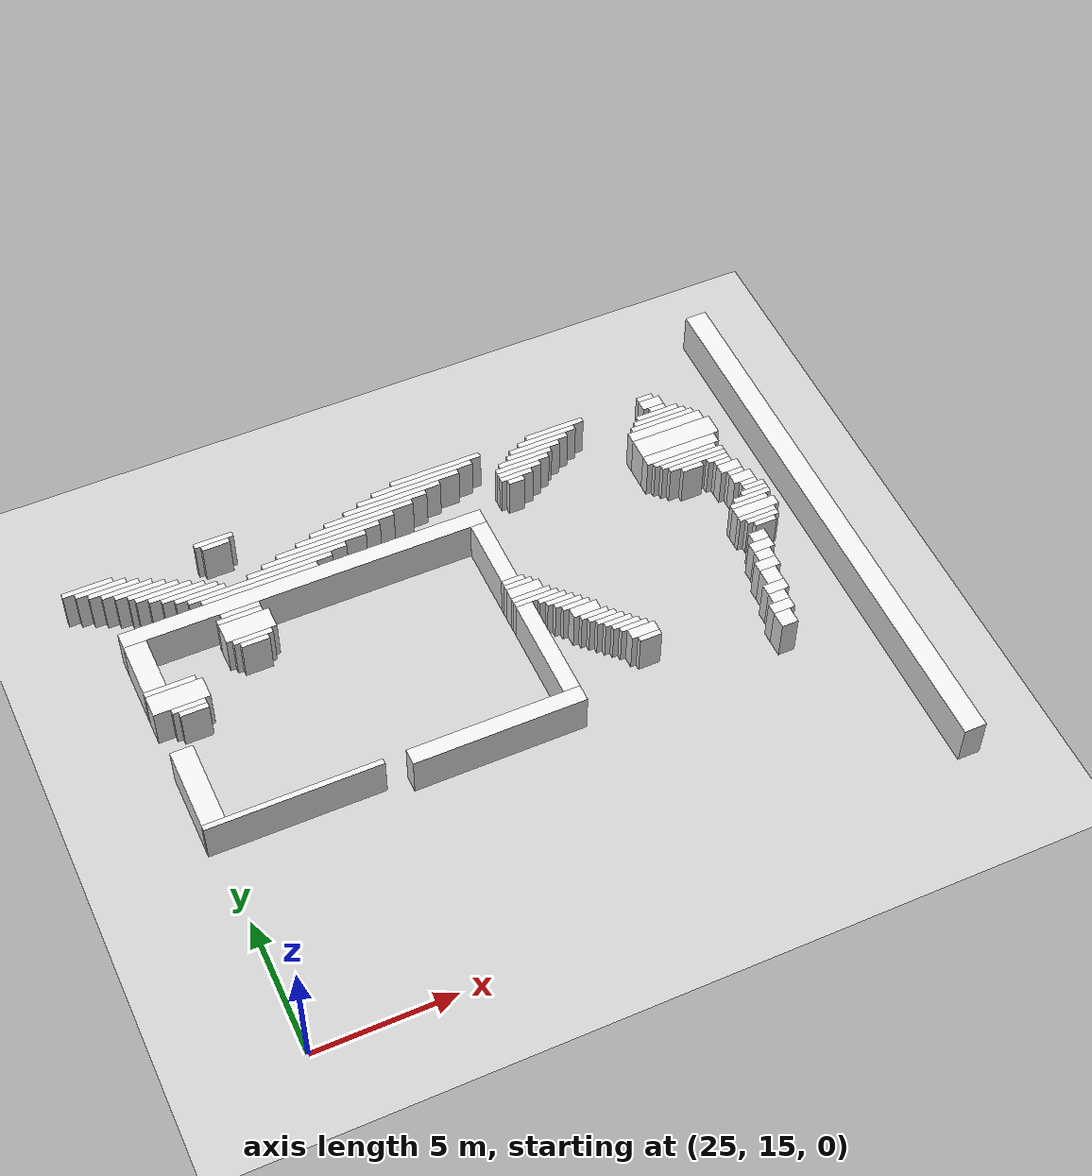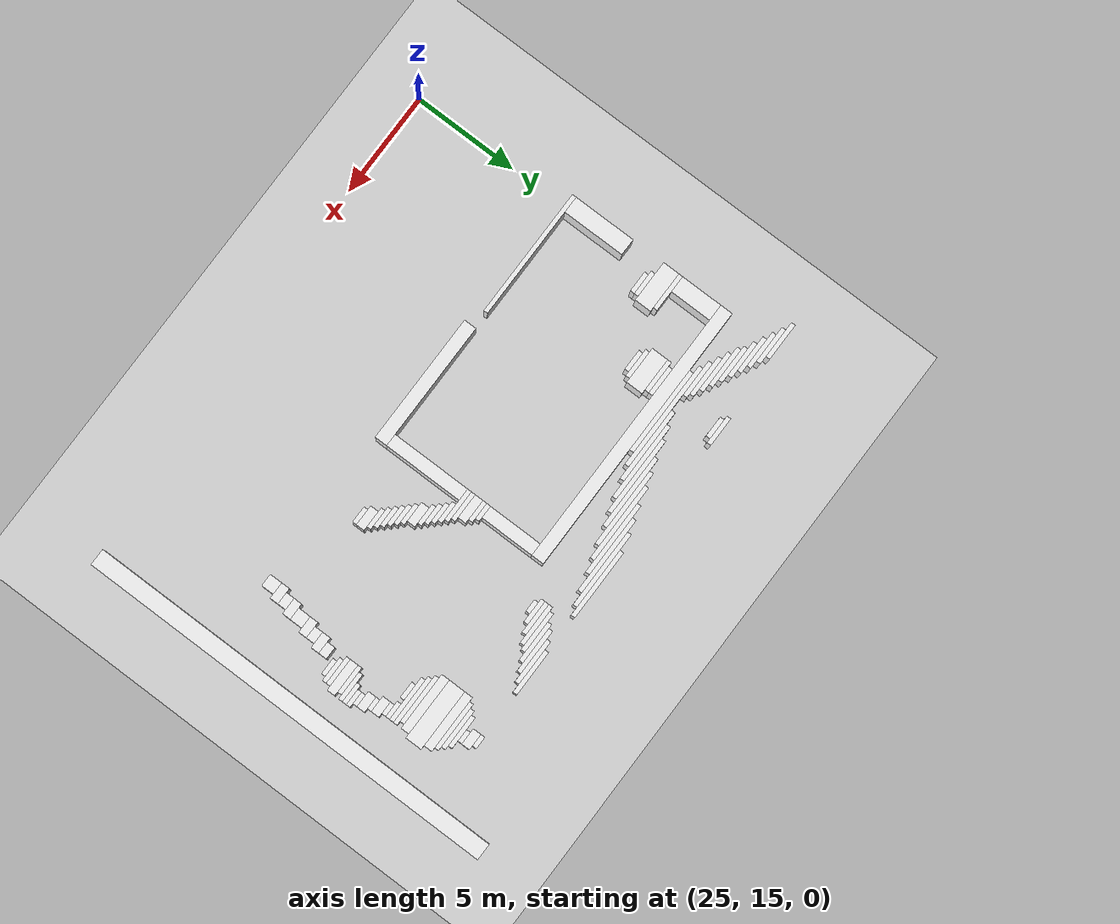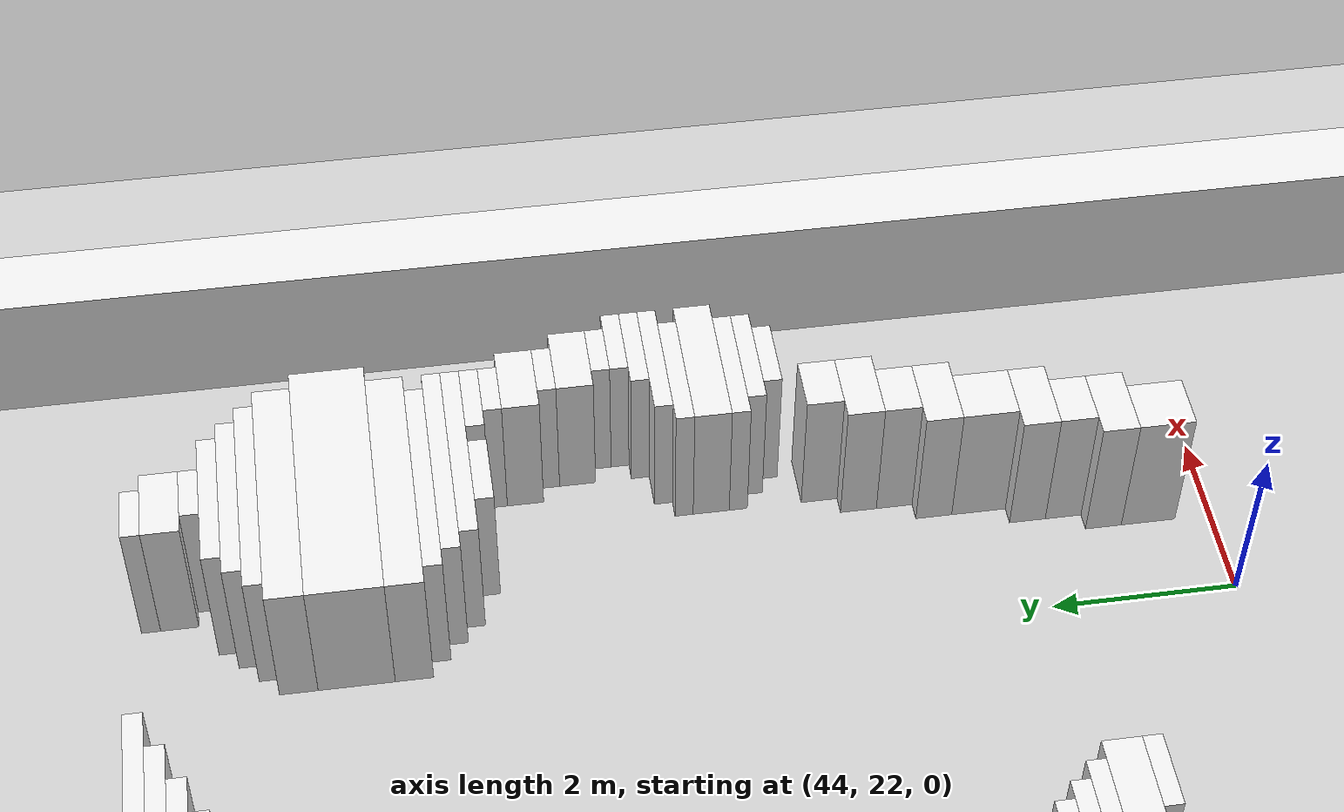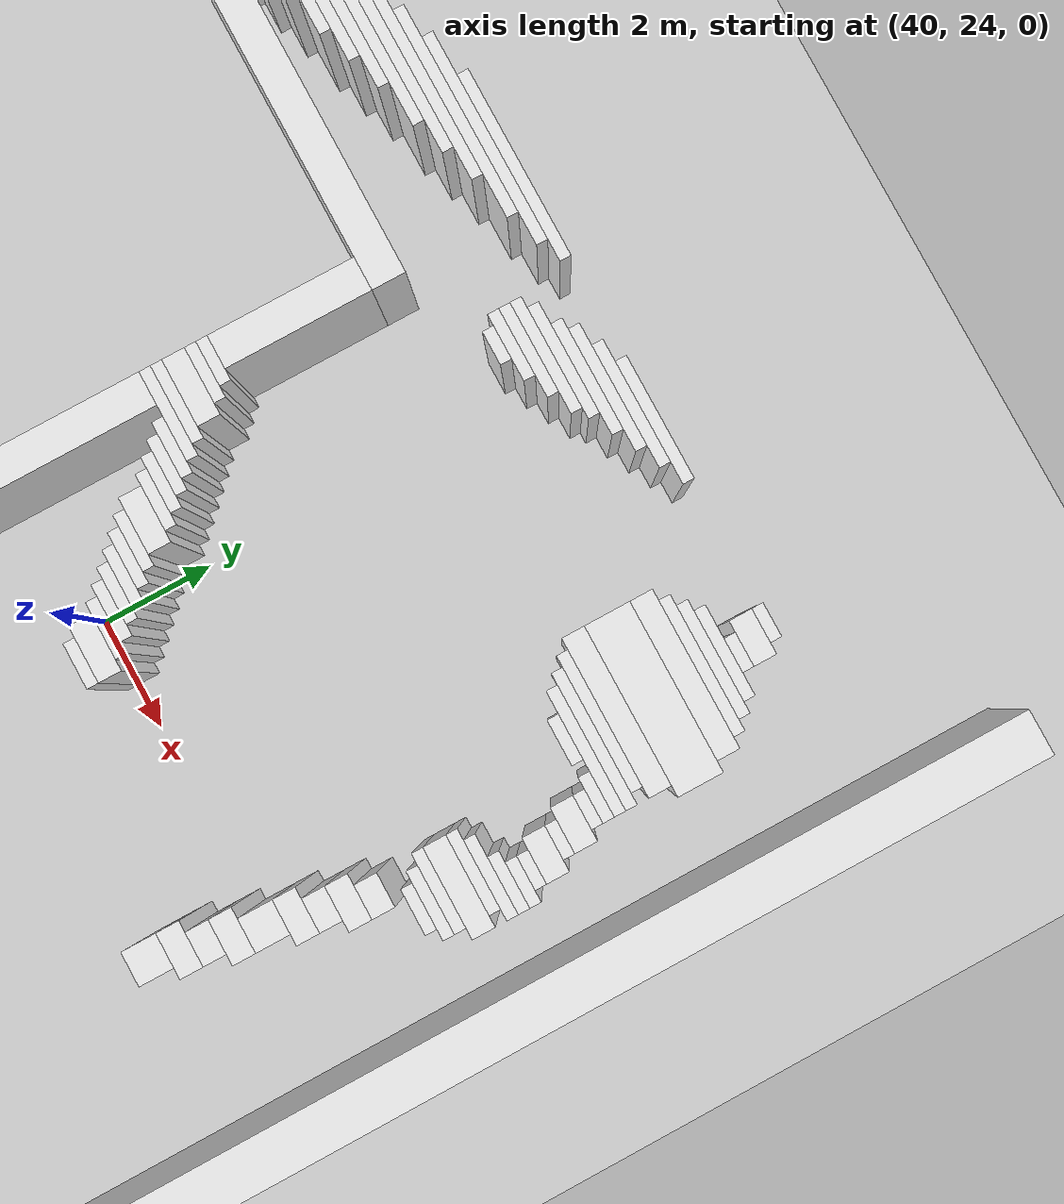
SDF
<sdf version="1.7">
 <world name="default">
  <model name="ground_plane">
   <static>1</static>
   <link name="link">
    <collision name="collision">
     <geometry><plane><normal>0 0 1</normal><size>120 120</size></plane></geometry>
    </collision>
    <visual name="visual">
     <geometry><plane><normal>0 0 1</normal><size>120 120</size></plane></geometry>
     <material>
      <script><uri>file://media/materials/scripts/gazebo.material</uri><name>Gazebo/Grey</name></script>
     </material>
    </visual>
   </link>
  </model>
  <model name="random_complex_01_model">
   <static>1</static>
   <link name="obs_509">
    <pose>28.9000 33.7000 0.8000 0 0 0</pose>
    <collision name="obs_509_col"><geometry><box><size>1.4000 0.2000 1.6000</size></box></geometry></collision>
    <visual name="obs_509_vis">
     <geometry><box><size>1.4000 0.2000 1.6000</size></box></geometry>
     <material>
      <script><uri>file://media/materials/scripts/gazebo.material</uri><name>Gazebo/White</name></script>
     </material>
    </visual>
   </link>
   <link name="obs_516">
    <pose>24.3000 33.5000 0.8000 0 0 0</pose>
    <collision name="obs_516_col"><geometry><box><size>1.8000 0.2000 1.6000</size></box></geometry></collision>
    <visual name="obs_516_vis">
     <geometry><box><size>1.8000 0.2000 1.6000</size></box></geometry>
     <material>
      <script><uri>file://media/materials/scripts/gazebo.material</uri><name>Gazebo/White</name></script>
     </material>
    </visual>
   </link>
   <link name="obs_517">
    <pose>28.9000 33.5000 0.8000 0 0 0</pose>
    <collision name="obs_517_col"><geometry><box><size>1.0000 0.2000 1.6000</size></box></geometry></collision>
    <visual name="obs_517_vis">
     <geometry><box><size>1.0000 0.2000 1.6000</size></box></geometry>
     <material>
      <script><uri>file://media/materials/scripts/gazebo.material</uri><name>Gazebo/White</name></script>
     </material>
    </visual>
   </link>
   <link name="obs_518">
    <pose>37.1000 33.5000 0.8000 0 0 0</pose>
    <collision name="obs_518_col"><geometry><box><size>3.4000 0.2000 1.6000</size></box></geometry></collision>
    <visual name="obs_518_vis">
     <geometry><box><size>3.4000 0.2000 1.6000</size></box></geometry>
     <material>
      <script><uri>file://media/materials/scripts/gazebo.material</uri><name>Gazebo/White</name></script>
     </material>
    </visual>
   </link>
   <link name="obs_519">
    <pose>41.7000 33.5000 0.8000 0 0 0</pose>
    <collision name="obs_519_col"><geometry><box><size>2.2000 0.2000 1.6000</size></box></geometry></collision>
    <visual name="obs_519_vis">
     <geometry><box><size>2.2000 0.2000 1.6000</size></box></geometry>
     <material>
      <script><uri>file://media/materials/scripts/gazebo.material</uri><name>Gazebo/White</name></script>
     </material>
    </visual>
   </link>
   <link name="obs_520">
    <pose>45.3000 33.5000 0.8000 0 0 0</pose>
    <collision name="obs_520_col"><geometry><box><size>0.6000 0.2000 1.6000</size></box></geometry></collision>
    <visual name="obs_520_vis">
     <geometry><box><size>0.6000 0.2000 1.6000</size></box></geometry>
     <material>
      <script><uri>file://media/materials/scripts/gazebo.material</uri><name>Gazebo/White</name></script>
     </material>
    </visual>
   </link>
   <link name="obs_526">
    <pose>24.7000 33.3000 0.8000 0 0 0</pose>
    <collision name="obs_526_col"><geometry><box><size>1.8000 0.2000 1.6000</size></box></geometry></collision>
    <visual name="obs_526_vis">
     <geometry><box><size>1.8000 0.2000 1.6000</size></box></geometry>
     <material>
      <script><uri>file://media/materials/scripts/gazebo.material</uri><name>Gazebo/White</name></script>
     </material>
    </visual>
   </link>
   <link name="obs_527">
    <pose>36.5000 33.3000 0.8000 0 0 0</pose>
    <collision name="obs_527_col"><geometry><box><size>3.8000 0.2000 1.6000</size></box></geometry></collision>
    <visual name="obs_527_vis">
     <geometry><box><size>3.8000 0.2000 1.6000</size></box></geometry>
     <material>
      <script><uri>file://media/materials/scripts/gazebo.material</uri><name>Gazebo/White</name></script>
     </material>
    </visual>
   </link>
   <link name="obs_528">
    <pose>41.3000 33.3000 0.8000 0 0 0</pose>
    <collision name="obs_528_col"><geometry><box><size>2.2000 0.2000 1.6000</size></box></geometry></collision>
    <visual name="obs_528_vis">
     <geometry><box><size>2.2000 0.2000 1.6000</size></box></geometry>
     <material>
      <script><uri>file://media/materials/scripts/gazebo.material</uri><name>Gazebo/White</name></script>
     </material>
    </visual>
   </link>
   <link name="obs_529">
    <pose>45.4000 33.2000 0.8000 0 0 0</pose>
    <collision name="obs_529_col"><geometry><box><size>0.8000 0.4000 1.6000</size></box></geometry></collision>
    <visual name="obs_529_vis">
     <geometry><box><size>0.8000 0.4000 1.6000</size></box></geometry>
     <material>
      <script><uri>file://media/materials/scripts/gazebo.material</uri><name>Gazebo/White</name></script>
     </material>
    </visual>
   </link>
   <link name="obs_532">
    <pose>25.1000 33.1000 0.8000 0 0 0</pose>
    <collision name="obs_532_col"><geometry><box><size>1.8000 0.2000 1.6000</size></box></geometry></collision>
    <visual name="obs_532_vis">
     <geometry><box><size>1.8000 0.2000 1.6000</size></box></geometry>
     <material>
      <script><uri>file://media/materials/scripts/gazebo.material</uri><name>Gazebo/White</name></script>
     </material>
    </visual>
   </link>
   <link name="obs_533">
    <pose>35.9000 33.1000 0.8000 0 0 0</pose>
    <collision name="obs_533_col"><geometry><box><size>3.8000 0.2000 1.6000</size></box></geometry></collision>
    <visual name="obs_533_vis">
     <geometry><box><size>3.8000 0.2000 1.6000</size></box></geometry>
     <material>
      <script><uri>file://media/materials/scripts/gazebo.material</uri><name>Gazebo/White</name></script>
     </material>
    </visual>
   </link>
   <link name="obs_534">
    <pose>40.9000 33.1000 0.8000 0 0 0</pose>
    <collision name="obs_534_col"><geometry><box><size>2.2000 0.2000 1.6000</size></box></geometry></collision>
    <visual name="obs_534_vis">
     <geometry><box><size>2.2000 0.2000 1.6000</size></box></geometry>
     <material>
      <script><uri>file://media/materials/scripts/gazebo.material</uri><name>Gazebo/White</name></script>
     </material>
    </visual>
   </link>
   <link name="obs_538">
    <pose>25.5000 32.9000 0.8000 0 0 0</pose>
    <collision name="obs_538_col"><geometry><box><size>1.8000 0.2000 1.6000</size></box></geometry></collision>
    <visual name="obs_538_vis">
     <geometry><box><size>1.8000 0.2000 1.6000</size></box></geometry>
     <material>
      <script><uri>file://media/materials/scripts/gazebo.material</uri><name>Gazebo/White</name></script>
     </material>
    </visual>
   </link>
   <link name="obs_539">
    <pose>35.2000 32.9000 0.8000 0 0 0</pose>
    <collision name="obs_539_col"><geometry><box><size>3.6000 0.2000 1.6000</size></box></geometry></collision>
    <visual name="obs_539_vis">
     <geometry><box><size>3.6000 0.2000 1.6000</size></box></geometry>
     <material>
      <script><uri>file://media/materials/scripts/gazebo.material</uri><name>Gazebo/White</name></script>
     </material>
    </visual>
   </link>
   <link name="obs_540">
    <pose>40.6000 32.9000 0.8000 0 0 0</pose>
    <collision name="obs_540_col"><geometry><box><size>2.0000 0.2000 1.6000</size></box></geometry></collision>
    <visual name="obs_540_vis">
     <geometry><box><size>2.0000 0.2000 1.6000</size></box></geometry>
     <material>
      <script><uri>file://media/materials/scripts/gazebo.material</uri><name>Gazebo/White</name></script>
     </material>
    </visual>
   </link>
   <link name="obs_541">
    <pose>45.5000 32.9000 0.8000 0 0 0</pose>
    <collision name="obs_541_col"><geometry><box><size>0.6000 0.2000 1.6000</size></box></geometry></collision>
    <visual name="obs_541_vis">
     <geometry><box><size>0.6000 0.2000 1.6000</size></box></geometry>
     <material>
      <script><uri>file://media/materials/scripts/gazebo.material</uri><name>Gazebo/White</name></script>
     </material>
    </visual>
   </link>
   <link name="obs_547">
    <pose>25.9000 32.7000 0.8000 0 0 0</pose>
    <collision name="obs_547_col"><geometry><box><size>1.8000 0.2000 1.6000</size></box></geometry></collision>
    <visual name="obs_547_vis">
     <geometry><box><size>1.8000 0.2000 1.6000</size></box></geometry>
     <material>
      <script><uri>file://media/materials/scripts/gazebo.material</uri><name>Gazebo/White</name></script>
     </material>
    </visual>
   </link>
   <link name="obs_548">
    <pose>34.5000 32.7000 0.8000 0 0 0</pose>
    <collision name="obs_548_col"><geometry><box><size>3.8000 0.2000 1.6000</size></box></geometry></collision>
    <visual name="obs_548_vis">
     <geometry><box><size>3.8000 0.2000 1.6000</size></box></geometry>
     <material>
      <script><uri>file://media/materials/scripts/gazebo.material</uri><name>Gazebo/White</name></script>
     </material>
    </visual>
   </link>
   <link name="obs_549">
    <pose>40.2000 32.7000 0.8000 0 0 0</pose>
    <collision name="obs_549_col"><geometry><box><size>2.0000 0.2000 1.6000</size></box></geometry></collision>
    <visual name="obs_549_vis">
     <geometry><box><size>2.0000 0.2000 1.6000</size></box></geometry>
     <material>
      <script><uri>file://media/materials/scripts/gazebo.material</uri><name>Gazebo/White</name></script>
     </material>
    </visual>
   </link>
   <link name="obs_550">
    <pose>45.4000 32.7000 0.8000 0 0 0</pose>
    <collision name="obs_550_col"><geometry><box><size>1.6000 0.2000 1.6000</size></box></geometry></collision>
    <visual name="obs_550_vis">
     <geometry><box><size>1.6000 0.2000 1.6000</size></box></geometry>
     <material>
      <script><uri>file://media/materials/scripts/gazebo.material</uri><name>Gazebo/White</name></script>
     </material>
    </visual>
   </link>
   <link name="obs_557">
    <pose>26.3000 32.5000 0.8000 0 0 0</pose>
    <collision name="obs_557_col"><geometry><box><size>1.8000 0.2000 1.6000</size></box></geometry></collision>
    <visual name="obs_557_vis">
     <geometry><box><size>1.8000 0.2000 1.6000</size></box></geometry>
     <material>
      <script><uri>file://media/materials/scripts/gazebo.material</uri><name>Gazebo/White</name></script>
     </material>
    </visual>
   </link>
   <link name="obs_558">
    <pose>33.9000 32.5000 0.8000 0 0 0</pose>
    <collision name="obs_558_col"><geometry><box><size>3.8000 0.2000 1.6000</size></box></geometry></collision>
    <visual name="obs_558_vis">
     <geometry><box><size>3.8000 0.2000 1.6000</size></box></geometry>
     <material>
      <script><uri>file://media/materials/scripts/gazebo.material</uri><name>Gazebo/White</name></script>
     </material>
    </visual>
   </link>
   <link name="obs_559">
    <pose>40.0000 32.5000 0.8000 0 0 0</pose>
    <collision name="obs_559_col"><geometry><box><size>2.0000 0.2000 1.6000</size></box></geometry></collision>
    <visual name="obs_559_vis">
     <geometry><box><size>2.0000 0.2000 1.6000</size></box></geometry>
     <material>
      <script><uri>file://media/materials/scripts/gazebo.material</uri><name>Gazebo/White</name></script>
     </material>
    </visual>
   </link>
   <link name="obs_560">
    <pose>45.4000 32.5000 0.8000 0 0 0</pose>
    <collision name="obs_560_col"><geometry><box><size>2.0000 0.2000 1.6000</size></box></geometry></collision>
    <visual name="obs_560_vis">
     <geometry><box><size>2.0000 0.2000 1.6000</size></box></geometry>
     <material>
      <script><uri>file://media/materials/scripts/gazebo.material</uri><name>Gazebo/White</name></script>
     </material>
    </visual>
   </link>
   <link name="obs_567">
    <pose>26.6000 32.3000 0.8000 0 0 0</pose>
    <collision name="obs_567_col"><geometry><box><size>2.0000 0.2000 1.6000</size></box></geometry></collision>
    <visual name="obs_567_vis">
     <geometry><box><size>2.0000 0.2000 1.6000</size></box></geometry>
     <material>
      <script><uri>file://media/materials/scripts/gazebo.material</uri><name>Gazebo/White</name></script>
     </material>
    </visual>
   </link>
   <link name="obs_568">
    <pose>33.2000 32.3000 0.8000 0 0 0</pose>
    <collision name="obs_568_col"><geometry><box><size>3.6000 0.2000 1.6000</size></box></geometry></collision>
    <visual name="obs_568_vis">
     <geometry><box><size>3.6000 0.2000 1.6000</size></box></geometry>
     <material>
      <script><uri>file://media/materials/scripts/gazebo.material</uri><name>Gazebo/White</name></script>
     </material>
    </visual>
   </link>
   <link name="obs_569">
    <pose>39.8000 32.3000 0.8000 0 0 0</pose>
    <collision name="obs_569_col"><geometry><box><size>1.6000 0.2000 1.6000</size></box></geometry></collision>
    <visual name="obs_569_vis">
     <geometry><box><size>1.6000 0.2000 1.6000</size></box></geometry>
     <material>
      <script><uri>file://media/materials/scripts/gazebo.material</uri><name>Gazebo/White</name></script>
     </material>
    </visual>
   </link>
   <link name="obs_570">
    <pose>45.4000 32.3000 0.8000 0 0 0</pose>
    <collision name="obs_570_col"><geometry><box><size>2.4000 0.2000 1.6000</size></box></geometry></collision>
    <visual name="obs_570_vis">
     <geometry><box><size>2.4000 0.2000 1.6000</size></box></geometry>
     <material>
      <script><uri>file://media/materials/scripts/gazebo.material</uri><name>Gazebo/White</name></script>
     </material>
    </visual>
   </link>
   <link name="obs_576">
    <pose>27.0000 32.1000 0.8000 0 0 0</pose>
    <collision name="obs_576_col"><geometry><box><size>2.0000 0.2000 1.6000</size></box></geometry></collision>
    <visual name="obs_576_vis">
     <geometry><box><size>2.0000 0.2000 1.6000</size></box></geometry>
     <material>
      <script><uri>file://media/materials/scripts/gazebo.material</uri><name>Gazebo/White</name></script>
     </material>
    </visual>
   </link>
   <link name="obs_577">
    <pose>32.5000 32.1000 0.8000 0 0 0</pose>
    <collision name="obs_577_col"><geometry><box><size>3.8000 0.2000 1.6000</size></box></geometry></collision>
    <visual name="obs_577_vis">
     <geometry><box><size>3.8000 0.2000 1.6000</size></box></geometry>
     <material>
      <script><uri>file://media/materials/scripts/gazebo.material</uri><name>Gazebo/White</name></script>
     </material>
    </visual>
   </link>
   <link name="obs_578">
    <pose>39.6000 32.1000 0.8000 0 0 0</pose>
    <collision name="obs_578_col"><geometry><box><size>1.2000 0.2000 1.6000</size></box></geometry></collision>
    <visual name="obs_578_vis">
     <geometry><box><size>1.2000 0.2000 1.6000</size></box></geometry>
     <material>
      <script><uri>file://media/materials/scripts/gazebo.material</uri><name>Gazebo/White</name></script>
     </material>
    </visual>
   </link>
   <link name="obs_579">
    <pose>45.4000 32.0000 0.8000 0 0 0</pose>
    <collision name="obs_579_col"><geometry><box><size>2.8000 0.4000 1.6000</size></box></geometry></collision>
    <visual name="obs_579_vis">
     <geometry><box><size>2.8000 0.4000 1.6000</size></box></geometry>
     <material>
      <script><uri>file://media/materials/scripts/gazebo.material</uri><name>Gazebo/White</name></script>
     </material>
    </visual>
   </link>
   <link name="obs_585">
    <pose>27.4000 31.9000 0.8000 0 0 0</pose>
    <collision name="obs_585_col"><geometry><box><size>2.0000 0.2000 1.6000</size></box></geometry></collision>
    <visual name="obs_585_vis">
     <geometry><box><size>2.0000 0.2000 1.6000</size></box></geometry>
     <material>
      <script><uri>file://media/materials/scripts/gazebo.material</uri><name>Gazebo/White</name></script>
     </material>
    </visual>
   </link>
   <link name="obs_586">
    <pose>31.9000 31.9000 0.8000 0 0 0</pose>
    <collision name="obs_586_col"><geometry><box><size>3.8000 0.2000 1.6000</size></box></geometry></collision>
    <visual name="obs_586_vis">
     <geometry><box><size>3.8000 0.2000 1.6000</size></box></geometry>
     <material>
      <script><uri>file://media/materials/scripts/gazebo.material</uri><name>Gazebo/White</name></script>
     </material>
    </visual>
   </link>
   <link name="obs_587">
    <pose>39.5000 31.9000 0.8000 0 0 0</pose>
    <collision name="obs_587_col"><geometry><box><size>0.6000 0.2000 1.6000</size></box></geometry></collision>
    <visual name="obs_587_vis">
     <geometry><box><size>0.6000 0.2000 1.6000</size></box></geometry>
     <material>
      <script><uri>file://media/materials/scripts/gazebo.material</uri><name>Gazebo/White</name></script>
     </material>
    </visual>
   </link>
   <link name="obs_596">
    <pose>27.7000 31.7000 0.8000 0 0 0</pose>
    <collision name="obs_596_col"><geometry><box><size>1.8000 0.2000 1.6000</size></box></geometry></collision>
    <visual name="obs_596_vis">
     <geometry><box><size>1.8000 0.2000 1.6000</size></box></geometry>
     <material>
      <script><uri>file://media/materials/scripts/gazebo.material</uri><name>Gazebo/White</name></script>
     </material>
    </visual>
   </link>
   <link name="obs_597">
    <pose>31.2000 31.7000 0.8000 0 0 0</pose>
    <collision name="obs_597_col"><geometry><box><size>3.6000 0.2000 1.6000</size></box></geometry></collision>
    <visual name="obs_597_vis">
     <geometry><box><size>3.6000 0.2000 1.6000</size></box></geometry>
     <material>
      <script><uri>file://media/materials/scripts/gazebo.material</uri><name>Gazebo/White</name></script>
     </material>
    </visual>
   </link>
   <link name="obs_604">
    <pose>29.8000 31.5000 0.8000 0 0 0</pose>
    <collision name="obs_604_col"><geometry><box><size>5.2000 0.2000 1.6000</size></box></geometry></collision>
    <visual name="obs_604_vis">
     <geometry><box><size>5.2000 0.2000 1.6000</size></box></geometry>
     <material>
      <script><uri>file://media/materials/scripts/gazebo.material</uri><name>Gazebo/White</name></script>
     </material>
    </visual>
   </link>
   <link name="obs_610">
    <pose>29.7000 31.3000 0.8000 0 0 0</pose>
    <collision name="obs_610_col"><geometry><box><size>4.2000 0.2000 1.6000</size></box></geometry></collision>
    <visual name="obs_610_vis">
     <geometry><box><size>4.2000 0.2000 1.6000</size></box></geometry>
     <material>
      <script><uri>file://media/materials/scripts/gazebo.material</uri><name>Gazebo/White</name></script>
     </material>
    </visual>
   </link>
   <link name="obs_611">
    <pose>45.5000 31.4000 0.8000 0 0 0</pose>
    <collision name="obs_611_col"><geometry><box><size>3.0000 0.8000 1.6000</size></box></geometry></collision>
    <visual name="obs_611_vis">
     <geometry><box><size>3.0000 0.8000 1.6000</size></box></geometry>
     <material>
      <script><uri>file://media/materials/scripts/gazebo.material</uri><name>Gazebo/White</name></script>
     </material>
    </visual>
   </link>
   <link name="obs_623">
    <pose>31.2000 30.9000 0.8000 0 0 0</pose>
    <collision name="obs_623_col"><geometry><box><size>13.2000 0.6000 1.6000</size></box></geometry></collision>
    <visual name="obs_623_vis">
     <geometry><box><size>13.2000 0.6000 1.6000</size></box></geometry>
     <material>
      <script><uri>file://media/materials/scripts/gazebo.material</uri><name>Gazebo/White</name></script>
     </material>
    </visual>
   </link>
   <link name="obs_624">
    <pose>45.4000 30.8000 0.8000 0 0 0</pose>
    <collision name="obs_624_col"><geometry><box><size>2.8000 0.4000 1.6000</size></box></geometry></collision>
    <visual name="obs_624_vis">
     <geometry><box><size>2.8000 0.4000 1.6000</size></box></geometry>
     <material>
      <script><uri>file://media/materials/scripts/gazebo.material</uri><name>Gazebo/White</name></script>
     </material>
    </visual>
   </link>
   <link name="obs_631">
    <pose>28.7000 30.5000 0.8000 0 0 0</pose>
    <collision name="obs_631_col"><geometry><box><size>1.4000 0.2000 1.6000</size></box></geometry></collision>
    <visual name="obs_631_vis">
     <geometry><box><size>1.4000 0.2000 1.6000</size></box></geometry>
     <material>
      <script><uri>file://media/materials/scripts/gazebo.material</uri><name>Gazebo/White</name></script>
     </material>
    </visual>
   </link>
   <link name="obs_632">
    <pose>45.4000 30.5000 0.8000 0 0 0</pose>
    <collision name="obs_632_col"><geometry><box><size>2.4000 0.2000 1.6000</size></box></geometry></collision>
    <visual name="obs_632_vis">
     <geometry><box><size>2.4000 0.2000 1.6000</size></box></geometry>
     <material>
      <script><uri>file://media/materials/scripts/gazebo.material</uri><name>Gazebo/White</name></script>
     </material>
    </visual>
   </link>
   <link name="obs_636">
    <pose>28.6000 30.3000 0.8000 0 0 0</pose>
    <collision name="obs_636_col"><geometry><box><size>1.6000 0.2000 1.6000</size></box></geometry></collision>
    <visual name="obs_636_vis">
     <geometry><box><size>1.6000 0.2000 1.6000</size></box></geometry>
     <material>
      <script><uri>file://media/materials/scripts/gazebo.material</uri><name>Gazebo/White</name></script>
     </material>
    </visual>
   </link>
   <link name="obs_637">
    <pose>45.6000 30.3000 0.8000 0 0 0</pose>
    <collision name="obs_637_col"><geometry><box><size>2.4000 0.2000 1.6000</size></box></geometry></collision>
    <visual name="obs_637_vis">
     <geometry><box><size>2.4000 0.2000 1.6000</size></box></geometry>
     <material>
      <script><uri>file://media/materials/scripts/gazebo.material</uri><name>Gazebo/White</name></script>
     </material>
    </visual>
   </link>
   <link name="obs_641">
    <pose>45.7000 30.1000 0.8000 0 0 0</pose>
    <collision name="obs_641_col"><geometry><box><size>2.2000 0.2000 1.6000</size></box></geometry></collision>
    <visual name="obs_641_vis">
     <geometry><box><size>2.2000 0.2000 1.6000</size></box></geometry>
     <material>
      <script><uri>file://media/materials/scripts/gazebo.material</uri><name>Gazebo/White</name></script>
     </material>
    </visual>
   </link>
   <link name="obs_647">
    <pose>45.4000 29.9000 0.8000 0 0 0</pose>
    <collision name="obs_647_col"><geometry><box><size>0.8000 0.2000 1.6000</size></box></geometry></collision>
    <visual name="obs_647_vis">
     <geometry><box><size>0.8000 0.2000 1.6000</size></box></geometry>
     <material>
      <script><uri>file://media/materials/scripts/gazebo.material</uri><name>Gazebo/White</name></script>
     </material>
    </visual>
   </link>
   <link name="obs_648">
    <pose>46.4000 29.9000 0.8000 0 0 0</pose>
    <collision name="obs_648_col"><geometry><box><size>0.8000 0.2000 1.6000</size></box></geometry></collision>
    <visual name="obs_648_vis">
     <geometry><box><size>0.8000 0.2000 1.6000</size></box></geometry>
     <material>
      <script><uri>file://media/materials/scripts/gazebo.material</uri><name>Gazebo/White</name></script>
     </material>
    </visual>
   </link>
   <link name="obs_655">
    <pose>46.5000 29.7000 0.8000 0 0 0</pose>
    <collision name="obs_655_col"><geometry><box><size>0.6000 0.2000 1.6000</size></box></geometry></collision>
    <visual name="obs_655_vis">
     <geometry><box><size>0.6000 0.2000 1.6000</size></box></geometry>
     <material>
      <script><uri>file://media/materials/scripts/gazebo.material</uri><name>Gazebo/White</name></script>
     </material>
    </visual>
   </link>
   <link name="obs_656">
    <pose>28.7000 29.8000 0.8000 0 0 0</pose>
    <collision name="obs_656_col"><geometry><box><size>1.8000 0.8000 1.6000</size></box></geometry></collision>
    <visual name="obs_656_vis">
     <geometry><box><size>1.8000 0.8000 1.6000</size></box></geometry>
     <material>
      <script><uri>file://media/materials/scripts/gazebo.material</uri><name>Gazebo/White</name></script>
     </material>
    </visual>
   </link>
   <link name="obs_663">
    <pose>46.6000 29.4000 0.8000 0 0 0</pose>
    <collision name="obs_663_col"><geometry><box><size>0.8000 0.4000 1.6000</size></box></geometry></collision>
    <visual name="obs_663_vis">
     <geometry><box><size>0.8000 0.4000 1.6000</size></box></geometry>
     <material>
      <script><uri>file://media/materials/scripts/gazebo.material</uri><name>Gazebo/White</name></script>
     </material>
    </visual>
   </link>
   <link name="obs_670">
    <pose>28.7000 29.3000 0.8000 0 0 0</pose>
    <collision name="obs_670_col"><geometry><box><size>1.4000 0.2000 1.6000</size></box></geometry></collision>
    <visual name="obs_670_vis">
     <geometry><box><size>1.4000 0.2000 1.6000</size></box></geometry>
     <material>
      <script><uri>file://media/materials/scripts/gazebo.material</uri><name>Gazebo/White</name></script>
     </material>
    </visual>
   </link>
   <link name="obs_679">
    <pose>28.7000 29.1000 0.8000 0 0 0</pose>
    <collision name="obs_679_col"><geometry><box><size>1.0000 0.2000 1.6000</size></box></geometry></collision>
    <visual name="obs_679_vis">
     <geometry><box><size>1.0000 0.2000 1.6000</size></box></geometry>
     <material>
      <script><uri>file://media/materials/scripts/gazebo.material</uri><name>Gazebo/White</name></script>
     </material>
    </visual>
   </link>
   <link name="obs_680">
    <pose>46.7000 29.1000 0.8000 0 0 0</pose>
    <collision name="obs_680_col"><geometry><box><size>0.6000 0.2000 1.6000</size></box></geometry></collision>
    <visual name="obs_680_vis">
     <geometry><box><size>0.6000 0.2000 1.6000</size></box></geometry>
     <material>
      <script><uri>file://media/materials/scripts/gazebo.material</uri><name>Gazebo/White</name></script>
     </material>
    </visual>
   </link>
   <link name="obs_687">
    <pose>25.0000 29.6000 0.8000 0 0 0</pose>
    <collision name="obs_687_col"><geometry><box><size>0.8000 2.0000 1.6000</size></box></geometry></collision>
    <visual name="obs_687_vis">
     <geometry><box><size>0.8000 2.0000 1.6000</size></box></geometry>
     <material>
      <script><uri>file://media/materials/scripts/gazebo.material</uri><name>Gazebo/White</name></script>
     </material>
    </visual>
   </link>
   <link name="obs_688">
    <pose>46.8000 28.8000 0.8000 0 0 0</pose>
    <collision name="obs_688_col"><geometry><box><size>0.8000 0.4000 1.6000</size></box></geometry></collision>
    <visual name="obs_688_vis">
     <geometry><box><size>0.8000 0.4000 1.6000</size></box></geometry>
     <material>
      <script><uri>file://media/materials/scripts/gazebo.material</uri><name>Gazebo/White</name></script>
     </material>
    </visual>
   </link>
   <link name="obs_704">
    <pose>25.5000 28.5000 0.8000 0 0 0</pose>
    <collision name="obs_704_col"><geometry><box><size>1.8000 0.2000 1.6000</size></box></geometry></collision>
    <visual name="obs_704_vis">
     <geometry><box><size>1.8000 0.2000 1.6000</size></box></geometry>
     <material>
      <script><uri>file://media/materials/scripts/gazebo.material</uri><name>Gazebo/White</name></script>
     </material>
    </visual>
   </link>
   <link name="obs_705">
    <pose>46.9000 28.5000 0.8000 0 0 0</pose>
    <collision name="obs_705_col"><geometry><box><size>0.6000 0.2000 1.6000</size></box></geometry></collision>
    <visual name="obs_705_vis">
     <geometry><box><size>0.6000 0.2000 1.6000</size></box></geometry>
     <material>
      <script><uri>file://media/materials/scripts/gazebo.material</uri><name>Gazebo/White</name></script>
     </material>
    </visual>
   </link>
   <link name="obs_716">
    <pose>47.0000 28.3000 0.8000 0 0 0</pose>
    <collision name="obs_716_col"><geometry><box><size>0.8000 0.2000 1.6000</size></box></geometry></collision>
    <visual name="obs_716_vis">
     <geometry><box><size>0.8000 0.2000 1.6000</size></box></geometry>
     <material>
      <script><uri>file://media/materials/scripts/gazebo.material</uri><name>Gazebo/White</name></script>
     </material>
    </visual>
   </link>
   <link name="obs_718">
    <pose>37.5000 29.3000 0.8000 0 0 0</pose>
    <collision name="obs_718_col"><geometry><box><size>0.6000 2.6000 1.6000</size></box></geometry></collision>
    <visual name="obs_718_vis">
     <geometry><box><size>0.6000 2.6000 1.6000</size></box></geometry>
     <material>
      <script><uri>file://media/materials/scripts/gazebo.material</uri><name>Gazebo/White</name></script>
     </material>
    </visual>
   </link>
   <link name="obs_731">
    <pose>46.9000 28.1000 0.8000 0 0 0</pose>
    <collision name="obs_731_col"><geometry><box><size>1.0000 0.2000 1.6000</size></box></geometry></collision>
    <visual name="obs_731_vis">
     <geometry><box><size>1.0000 0.2000 1.6000</size></box></geometry>
     <material>
      <script><uri>file://media/materials/scripts/gazebo.material</uri><name>Gazebo/White</name></script>
     </material>
    </visual>
   </link>
   <link name="obs_735">
    <pose>37.6000 27.9000 0.8000 0 0 0</pose>
    <collision name="obs_735_col"><geometry><box><size>0.8000 0.2000 1.6000</size></box></geometry></collision>
    <visual name="obs_735_vis">
     <geometry><box><size>0.8000 0.2000 1.6000</size></box></geometry>
     <material>
      <script><uri>file://media/materials/scripts/gazebo.material</uri><name>Gazebo/White</name></script>
     </material>
    </visual>
   </link>
   <link name="obs_736">
    <pose>46.7000 27.9000 0.8000 0 0 0</pose>
    <collision name="obs_736_col"><geometry><box><size>1.4000 0.2000 1.6000</size></box></geometry></collision>
    <visual name="obs_736_vis">
     <geometry><box><size>1.4000 0.2000 1.6000</size></box></geometry>
     <material>
      <script><uri>file://media/materials/scripts/gazebo.material</uri><name>Gazebo/White</name></script>
     </material>
    </visual>
   </link>
   <link name="obs_739">
    <pose>25.6000 28.0000 0.8000 0 0 0</pose>
    <collision name="obs_739_col"><geometry><box><size>2.0000 0.8000 1.6000</size></box></geometry></collision>
    <visual name="obs_739_vis">
     <geometry><box><size>2.0000 0.8000 1.6000</size></box></geometry>
     <material>
      <script><uri>file://media/materials/scripts/gazebo.material</uri><name>Gazebo/White</name></script>
     </material>
    </visual>
   </link>
   <link name="obs_742">
    <pose>37.7000 27.7000 0.8000 0 0 0</pose>
    <collision name="obs_742_col"><geometry><box><size>1.0000 0.2000 1.6000</size></box></geometry></collision>
    <visual name="obs_742_vis">
     <geometry><box><size>1.0000 0.2000 1.6000</size></box></geometry>
     <material>
      <script><uri>file://media/materials/scripts/gazebo.material</uri><name>Gazebo/White</name></script>
     </material>
    </visual>
   </link>
   <link name="obs_743">
    <pose>46.5000 27.7000 0.8000 0 0 0</pose>
    <collision name="obs_743_col"><geometry><box><size>1.4000 0.2000 1.6000</size></box></geometry></collision>
    <visual name="obs_743_vis">
     <geometry><box><size>1.4000 0.2000 1.6000</size></box></geometry>
     <material>
      <script><uri>file://media/materials/scripts/gazebo.material</uri><name>Gazebo/White</name></script>
     </material>
    </visual>
   </link>
   <link name="obs_745">
    <pose>25.8000 27.5000 0.8000 0 0 0</pose>
    <collision name="obs_745_col"><geometry><box><size>1.2000 0.2000 1.6000</size></box></geometry></collision>
    <visual name="obs_745_vis">
     <geometry><box><size>1.2000 0.2000 1.6000</size></box></geometry>
     <material>
      <script><uri>file://media/materials/scripts/gazebo.material</uri><name>Gazebo/White</name></script>
     </material>
    </visual>
   </link>
   <link name="obs_747">
    <pose>37.8000 27.4000 0.8000 0 0 0</pose>
    <collision name="obs_747_col"><geometry><box><size>1.2000 0.4000 1.6000</size></box></geometry></collision>
    <visual name="obs_747_vis">
     <geometry><box><size>1.2000 0.4000 1.6000</size></box></geometry>
     <material>
      <script><uri>file://media/materials/scripts/gazebo.material</uri><name>Gazebo/White</name></script>
     </material>
    </visual>
   </link>
   <link name="obs_748">
    <pose>46.6000 27.4000 0.8000 0 0 0</pose>
    <collision name="obs_748_col"><geometry><box><size>1.6000 0.4000 1.6000</size></box></geometry></collision>
    <visual name="obs_748_vis">
     <geometry><box><size>1.6000 0.4000 1.6000</size></box></geometry>
     <material>
      <script><uri>file://media/materials/scripts/gazebo.material</uri><name>Gazebo/White</name></script>
     </material>
    </visual>
   </link>
   <link name="obs_750">
    <pose>25.9000 27.3000 0.8000 0 0 0</pose>
    <collision name="obs_750_col"><geometry><box><size>1.0000 0.2000 1.6000</size></box></geometry></collision>
    <visual name="obs_750_vis">
     <geometry><box><size>1.0000 0.2000 1.6000</size></box></geometry>
     <material>
      <script><uri>file://media/materials/scripts/gazebo.material</uri><name>Gazebo/White</name></script>
     </material>
    </visual>
   </link>
   <link name="obs_755">
    <pose>37.9000 27.1000 0.8000 0 0 0</pose>
    <collision name="obs_755_col"><geometry><box><size>1.4000 0.2000 1.6000</size></box></geometry></collision>
    <visual name="obs_755_vis">
     <geometry><box><size>1.4000 0.2000 1.6000</size></box></geometry>
     <material>
      <script><uri>file://media/materials/scripts/gazebo.material</uri><name>Gazebo/White</name></script>
     </material>
    </visual>
   </link>
   <link name="obs_756">
    <pose>46.5000 27.1000 0.8000 0 0 0</pose>
    <collision name="obs_756_col"><geometry><box><size>1.4000 0.2000 1.6000</size></box></geometry></collision>
    <visual name="obs_756_vis">
     <geometry><box><size>1.4000 0.2000 1.6000</size></box></geometry>
     <material>
      <script><uri>file://media/materials/scripts/gazebo.material</uri><name>Gazebo/White</name></script>
     </material>
    </visual>
   </link>
   <link name="obs_761">
    <pose>38.0000 26.9000 0.8000 0 0 0</pose>
    <collision name="obs_761_col"><geometry><box><size>1.6000 0.2000 1.6000</size></box></geometry></collision>
    <visual name="obs_761_vis">
     <geometry><box><size>1.6000 0.2000 1.6000</size></box></geometry>
     <material>
      <script><uri>file://media/materials/scripts/gazebo.material</uri><name>Gazebo/White</name></script>
     </material>
    </visual>
   </link>
   <link name="obs_762">
    <pose>46.6000 26.9000 0.8000 0 0 0</pose>
    <collision name="obs_762_col"><geometry><box><size>1.2000 0.2000 1.6000</size></box></geometry></collision>
    <visual name="obs_762_vis">
     <geometry><box><size>1.2000 0.2000 1.6000</size></box></geometry>
     <material>
      <script><uri>file://media/materials/scripts/gazebo.material</uri><name>Gazebo/White</name></script>
     </material>
    </visual>
   </link>
   <link name="obs_775">
    <pose>38.5000 26.7000 0.8000 0 0 0</pose>
    <collision name="obs_775_col"><geometry><box><size>1.0000 0.2000 1.6000</size></box></geometry></collision>
    <visual name="obs_775_vis">
     <geometry><box><size>1.0000 0.2000 1.6000</size></box></geometry>
     <material>
      <script><uri>file://media/materials/scripts/gazebo.material</uri><name>Gazebo/White</name></script>
     </material>
    </visual>
   </link>
   <link name="obs_776">
    <pose>46.6000 26.7000 0.8000 0 0 0</pose>
    <collision name="obs_776_col"><geometry><box><size>0.8000 0.2000 1.6000</size></box></geometry></collision>
    <visual name="obs_776_vis">
     <geometry><box><size>0.8000 0.2000 1.6000</size></box></geometry>
     <material>
      <script><uri>file://media/materials/scripts/gazebo.material</uri><name>Gazebo/White</name></script>
     </material>
    </visual>
   </link>
   <link name="obs_782">
    <pose>38.7000 26.5000 0.8000 0 0 0</pose>
    <collision name="obs_782_col"><geometry><box><size>1.0000 0.2000 1.6000</size></box></geometry></collision>
    <visual name="obs_782_vis">
     <geometry><box><size>1.0000 0.2000 1.6000</size></box></geometry>
     <material>
      <script><uri>file://media/materials/scripts/gazebo.material</uri><name>Gazebo/White</name></script>
     </material>
    </visual>
   </link>
   <link name="obs_787">
    <pose>38.9000 26.3000 0.8000 0 0 0</pose>
    <collision name="obs_787_col"><geometry><box><size>1.0000 0.2000 1.6000</size></box></geometry></collision>
    <visual name="obs_787_vis">
     <geometry><box><size>1.0000 0.2000 1.6000</size></box></geometry>
     <material>
      <script><uri>file://media/materials/scripts/gazebo.material</uri><name>Gazebo/White</name></script>
     </material>
    </visual>
   </link>
   <link name="obs_789">
    <pose>46.1000 26.2000 0.8000 0 0 0</pose>
    <collision name="obs_789_col"><geometry><box><size>0.6000 0.4000 1.6000</size></box></geometry></collision>
    <visual name="obs_789_vis">
     <geometry><box><size>0.6000 0.4000 1.6000</size></box></geometry>
     <material>
      <script><uri>file://media/materials/scripts/gazebo.material</uri><name>Gazebo/White</name></script>
     </material>
    </visual>
   </link>
   <link name="obs_795">
    <pose>39.1000 26.1000 0.8000 0 0 0</pose>
    <collision name="obs_795_col"><geometry><box><size>1.0000 0.2000 1.6000</size></box></geometry></collision>
    <visual name="obs_795_vis">
     <geometry><box><size>1.0000 0.2000 1.6000</size></box></geometry>
     <material>
      <script><uri>file://media/materials/scripts/gazebo.material</uri><name>Gazebo/White</name></script>
     </material>
    </visual>
   </link>
   <link name="obs_803">
    <pose>39.3000 25.8000 0.8000 0 0 0</pose>
    <collision name="obs_803_col"><geometry><box><size>1.0000 0.4000 1.6000</size></box></geometry></collision>
    <visual name="obs_803_vis">
     <geometry><box><size>1.0000 0.4000 1.6000</size></box></geometry>
     <material>
      <script><uri>file://media/materials/scripts/gazebo.material</uri><name>Gazebo/White</name></script>
     </material>
    </visual>
   </link>
   <link name="obs_804">
    <pose>46.0000 25.8000 0.8000 0 0 0</pose>
    <collision name="obs_804_col"><geometry><box><size>0.8000 0.4000 1.6000</size></box></geometry></collision>
    <visual name="obs_804_vis">
     <geometry><box><size>0.8000 0.4000 1.6000</size></box></geometry>
     <material>
      <script><uri>file://media/materials/scripts/gazebo.material</uri><name>Gazebo/White</name></script>
     </material>
    </visual>
   </link>
   <link name="obs_814">
    <pose>39.5000 25.5000 0.8000 0 0 0</pose>
    <collision name="obs_814_col"><geometry><box><size>1.0000 0.2000 1.6000</size></box></geometry></collision>
    <visual name="obs_814_vis">
     <geometry><box><size>1.0000 0.2000 1.6000</size></box></geometry>
     <material>
      <script><uri>file://media/materials/scripts/gazebo.material</uri><name>Gazebo/White</name></script>
     </material>
    </visual>
   </link>
   <link name="obs_815">
    <pose>45.9000 25.4000 0.8000 0 0 0</pose>
    <collision name="obs_815_col"><geometry><box><size>0.6000 0.4000 1.6000</size></box></geometry></collision>
    <visual name="obs_815_vis">
     <geometry><box><size>0.6000 0.4000 1.6000</size></box></geometry>
     <material>
      <script><uri>file://media/materials/scripts/gazebo.material</uri><name>Gazebo/White</name></script>
     </material>
    </visual>
   </link>
   <link name="obs_819">
    <pose>39.7000 25.3000 0.8000 0 0 0</pose>
    <collision name="obs_819_col"><geometry><box><size>1.0000 0.2000 1.6000</size></box></geometry></collision>
    <visual name="obs_819_vis">
     <geometry><box><size>1.0000 0.2000 1.6000</size></box></geometry>
     <material>
      <script><uri>file://media/materials/scripts/gazebo.material</uri><name>Gazebo/White</name></script>
     </material>
    </visual>
   </link>
   <link name="obs_822">
    <pose>39.9000 25.1000 0.8000 0 0 0</pose>
    <collision name="obs_822_col"><geometry><box><size>1.0000 0.2000 1.6000</size></box></geometry></collision>
    <visual name="obs_822_vis">
     <geometry><box><size>1.0000 0.2000 1.6000</size></box></geometry>
     <material>
      <script><uri>file://media/materials/scripts/gazebo.material</uri><name>Gazebo/White</name></script>
     </material>
    </visual>
   </link>
   <link name="obs_824">
    <pose>45.8000 25.0000 0.8000 0 0 0</pose>
    <collision name="obs_824_col"><geometry><box><size>0.8000 0.4000 1.6000</size></box></geometry></collision>
    <visual name="obs_824_vis">
     <geometry><box><size>0.8000 0.4000 1.6000</size></box></geometry>
     <material>
      <script><uri>file://media/materials/scripts/gazebo.material</uri><name>Gazebo/White</name></script>
     </material>
    </visual>
   </link>
   <link name="obs_827">
    <pose>40.1000 24.9000 0.8000 0 0 0</pose>
    <collision name="obs_827_col"><geometry><box><size>1.0000 0.2000 1.6000</size></box></geometry></collision>
    <visual name="obs_827_vis">
     <geometry><box><size>1.0000 0.2000 1.6000</size></box></geometry>
     <material>
      <script><uri>file://media/materials/scripts/gazebo.material</uri><name>Gazebo/White</name></script>
     </material>
    </visual>
   </link>
   <link name="obs_834">
    <pose>40.3000 24.7000 0.8000 0 0 0</pose>
    <collision name="obs_834_col"><geometry><box><size>1.0000 0.2000 1.6000</size></box></geometry></collision>
    <visual name="obs_834_vis">
     <geometry><box><size>1.0000 0.2000 1.6000</size></box></geometry>
     <material>
      <script><uri>file://media/materials/scripts/gazebo.material</uri><name>Gazebo/White</name></script>
     </material>
    </visual>
   </link>
   <link name="obs_840">
    <pose>40.5000 24.5000 0.8000 0 0 0</pose>
    <collision name="obs_840_col"><geometry><box><size>1.0000 0.2000 1.6000</size></box></geometry></collision>
    <visual name="obs_840_vis">
     <geometry><box><size>1.0000 0.2000 1.6000</size></box></geometry>
     <material>
      <script><uri>file://media/materials/scripts/gazebo.material</uri><name>Gazebo/White</name></script>
     </material>
    </visual>
   </link>
   <link name="obs_843">
    <pose>45.7000 24.5000 0.8000 0 0 0</pose>
    <collision name="obs_843_col"><geometry><box><size>0.6000 0.6000 1.6000</size></box></geometry></collision>
    <visual name="obs_843_vis">
     <geometry><box><size>0.6000 0.6000 1.6000</size></box></geometry>
     <material>
      <script><uri>file://media/materials/scripts/gazebo.material</uri><name>Gazebo/White</name></script>
     </material>
    </visual>
   </link>
   <link name="obs_850">
    <pose>40.7000 24.2000 0.8000 0 0 0</pose>
    <collision name="obs_850_col"><geometry><box><size>1.0000 0.4000 1.6000</size></box></geometry></collision>
    <visual name="obs_850_vis">
     <geometry><box><size>1.0000 0.4000 1.6000</size></box></geometry>
     <material>
      <script><uri>file://media/materials/scripts/gazebo.material</uri><name>Gazebo/White</name></script>
     </material>
    </visual>
   </link>
   <link name="obs_858">
    <pose>45.6000 24.0000 0.8000 0 0 0</pose>
    <collision name="obs_858_col"><geometry><box><size>0.8000 0.4000 1.6000</size></box></geometry></collision>
    <visual name="obs_858_vis">
     <geometry><box><size>0.8000 0.4000 1.6000</size></box></geometry>
     <material>
      <script><uri>file://media/materials/scripts/gazebo.material</uri><name>Gazebo/White</name></script>
     </material>
    </visual>
   </link>
   <link name="obs_861">
    <pose>40.8000 23.9000 0.8000 0 0 0</pose>
    <collision name="obs_861_col"><geometry><box><size>0.8000 0.2000 1.6000</size></box></geometry></collision>
    <visual name="obs_861_vis">
     <geometry><box><size>0.8000 0.2000 1.6000</size></box></geometry>
     <material>
      <script><uri>file://media/materials/scripts/gazebo.material</uri><name>Gazebo/White</name></script>
     </material>
    </visual>
   </link>
   <link name="obs_868">
    <pose>45.5000 23.6000 0.8000 0 0 0</pose>
    <collision name="obs_868_col"><geometry><box><size>0.6000 0.4000 1.6000</size></box></geometry></collision>
    <visual name="obs_868_vis">
     <geometry><box><size>0.6000 0.4000 1.6000</size></box></geometry>
     <material>
      <script><uri>file://media/materials/scripts/gazebo.material</uri><name>Gazebo/White</name></script>
     </material>
    </visual>
   </link>
   <link name="obs_885">
    <pose>37.5000 24.9000 0.8000 0 0 0</pose>
    <collision name="obs_885_col"><geometry><box><size>0.6000 3.8000 1.6000</size></box></geometry></collision>
    <visual name="obs_885_vis">
     <geometry><box><size>0.6000 3.8000 1.6000</size></box></geometry>
     <material>
      <script><uri>file://media/materials/scripts/gazebo.material</uri><name>Gazebo/White</name></script>
     </material>
    </visual>
   </link>
   <link name="obs_886">
    <pose>25.0000 24.5000 0.8000 0 0 0</pose>
    <collision name="obs_886_col"><geometry><box><size>0.8000 3.0000 1.6000</size></box></geometry></collision>
    <visual name="obs_886_vis">
     <geometry><box><size>0.8000 3.0000 1.6000</size></box></geometry>
     <material>
      <script><uri>file://media/materials/scripts/gazebo.material</uri><name>Gazebo/White</name></script>
     </material>
    </visual>
   </link>
   <link name="obs_888">
    <pose>45.4000 23.2000 0.8000 0 0 0</pose>
    <collision name="obs_888_col"><geometry><box><size>0.8000 0.4000 1.6000</size></box></geometry></collision>
    <visual name="obs_888_vis">
     <geometry><box><size>0.8000 0.4000 1.6000</size></box></geometry>
     <material>
      <script><uri>file://media/materials/scripts/gazebo.material</uri><name>Gazebo/White</name></script>
     </material>
    </visual>
   </link>
   <link name="obs_906">
    <pose>27.7000 22.9000 0.8000 0 0 0</pose>
    <collision name="obs_906_col"><geometry><box><size>6.2000 0.2000 1.6000</size></box></geometry></collision>
    <visual name="obs_906_vis">
     <geometry><box><size>6.2000 0.2000 1.6000</size></box></geometry>
     <material>
      <script><uri>file://media/materials/scripts/gazebo.material</uri><name>Gazebo/White</name></script>
     </material>
    </visual>
   </link>
   <link name="obs_916">
    <pose>34.7000 22.7000 0.8000 0 0 0</pose>
    <collision name="obs_916_col"><geometry><box><size>6.2000 0.6000 1.6000</size></box></geometry></collision>
    <visual name="obs_916_vis">
     <geometry><box><size>6.2000 0.6000 1.6000</size></box></geometry>
     <material>
      <script><uri>file://media/materials/scripts/gazebo.material</uri><name>Gazebo/White</name></script>
     </material>
    </visual>
   </link>
   <link name="obs_917">
    <pose>45.3000 22.7000 0.8000 0 0 0</pose>
    <collision name="obs_917_col"><geometry><box><size>0.6000 0.6000 1.6000</size></box></geometry></collision>
    <visual name="obs_917_vis">
     <geometry><box><size>0.6000 0.6000 1.6000</size></box></geometry>
     <material>
      <script><uri>file://media/materials/scripts/gazebo.material</uri><name>Gazebo/White</name></script>
     </material>
    </visual>
   </link>
   <link name="obs_1121">
    <pose>48.8000 26.3000 0.8000 0 0 0</pose>
    <collision name="obs_1121_col"><geometry><box><size>0.8000 20.2000 1.6000</size></box></geometry></collision>
    <visual name="obs_1121_vis">
     <geometry><box><size>0.8000 20.2000 1.6000</size></box></geometry>
     <material>
      <script><uri>file://media/materials/scripts/gazebo.material</uri><name>Gazebo/White</name></script>
     </material>
    </visual>
   </link>
  </model>
 </world>
</sdf>
